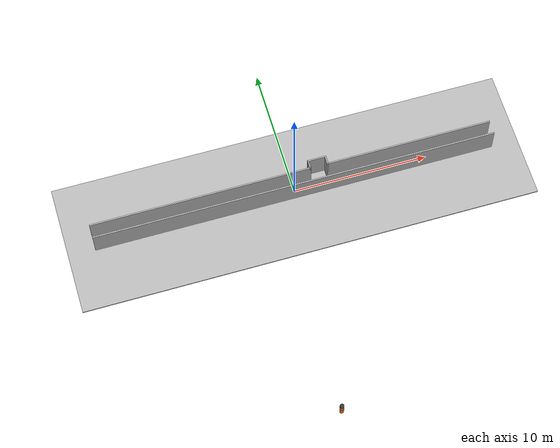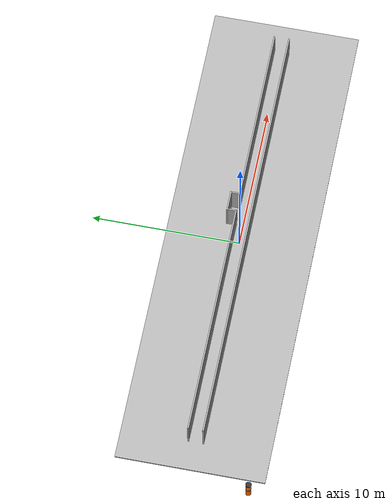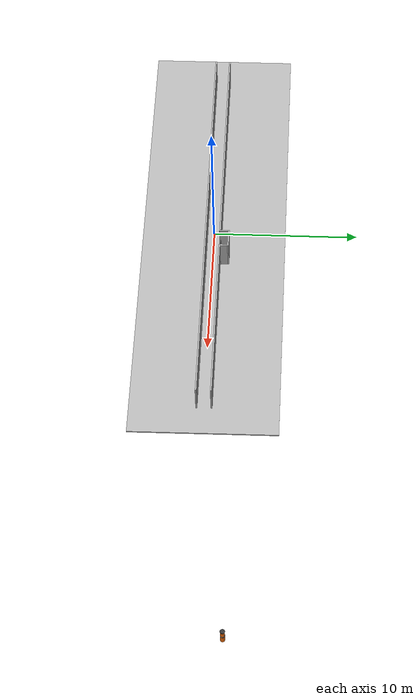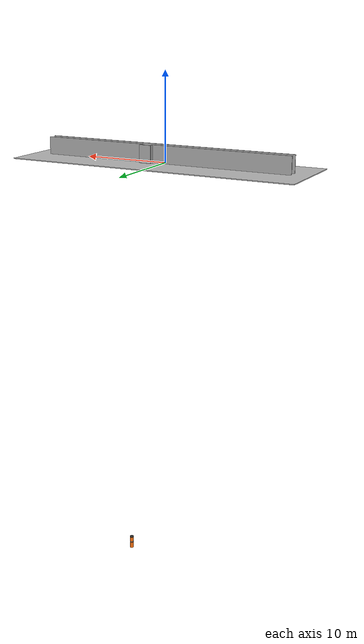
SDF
<sdf version="1.9">
 <world name="corridor_0.90">
  <gravity>0 0 -9.81</gravity>
  <light name="sun" type="directional">
   <pose>0 0 10 0 0 0</pose>
   <diffuse>0.8 0.8 0.8 1</diffuse>
   <specular>0.2 0.2 0.2 1</specular>
   <attenuation>
    <range>1000</range>
    <constant>0.9</constant>
    <linear>0.01</linear>
    <quadratic>0.001</quadratic>
   </attenuation>
   <direction>-0.5 0.1 -0.9</direction>
  </light>
  <plugin filename="gz-sim-physics-system" name="gz::sim::systems::Physics"/>
  <plugin filename="gz-sim-user-commands-system" name="gz::sim::systems::UserCommands"/>
  <plugin filename="gz-sim-scene-broadcaster-system" name="gz::sim::systems::SceneBroadcaster"/>
  <plugin filename="gz-sim-sensors-system" name="gz::sim::systems::Sensors">
   <render_engine>ogre2</render_engine>
  </plugin>
  <plugin filename="gz-sim-imu-system" name="gz::sim::systems::Imu"/>
  <model name="ground">
   <static>true</static>
   <link name="link">
    <collision name="collision"><geometry><box><size>34.0 10.0 0.1</size></box></geometry></collision>
    <visual name="visual">
     <geometry><box><size>34.0 10.0 0.1</size></box></geometry>
     <material><ambient>0.7 0.7 0.7 1</ambient><diffuse>0.7 0.7 0.7 1</diffuse></material>
    </visual>
   </link>
   <pose>0.0 0.0 -0.05 0 0 0</pose>
  </model>
  <model name="left_wall">
   <static>true</static>
   <link name="link">
    <collision name="collision"><geometry><box><size>30.0 0.1 2.0</size></box></geometry></collision>
    <visual name="visual">
     <geometry><box><size>30.0 0.1 2.0</size></box></geometry>
     <material><ambient>0.7 0.7 0.7 1</ambient><diffuse>0.7 0.7 0.7 1</diffuse></material>
    </visual>
   </link>
   <pose>0.0 -0.5 1.0 0 0 0</pose>
  </model>
  <model name="right_wall_front">
   <static>true</static>
   <link name="link">
    <collision name="collision"><geometry><box><size>16.4 0.1 2.0</size></box></geometry></collision>
    <visual name="visual">
     <geometry><box><size>16.4 0.1 2.0</size></box></geometry>
     <material><ambient>0.7 0.7 0.7 1</ambient><diffuse>0.7 0.7 0.7 1</diffuse></material>
    </visual>
   </link>
   <pose>-6.800000000000001 0.5 1.0 0 0 0</pose>
  </model>
  <model name="right_wall_back">
   <static>true</static>
   <link name="link">
    <collision name="collision"><geometry><box><size>12.4 0.1 2.0</size></box></geometry></collision>
    <visual name="visual">
     <geometry><box><size>12.4 0.1 2.0</size></box></geometry>
     <material><ambient>0.7 0.7 0.7 1</ambient><diffuse>0.7 0.7 0.7 1</diffuse></material>
    </visual>
   </link>
   <pose>8.8 0.5 1.0 0 0 0</pose>
  </model>
  <model name="recess_side_left">
   <static>true</static>
   <link name="link">
    <collision name="collision"><geometry><box><size>0.1 0.6 2.0</size></box></geometry></collision>
    <visual name="visual">
     <geometry><box><size>0.1 0.6 2.0</size></box></geometry>
     <material><ambient>0.7 0.7 0.7 1</ambient><diffuse>0.7 0.7 0.7 1</diffuse></material>
    </visual>
   </link>
   <pose>1.3499999999999999 0.75 1.0 0 0 0</pose>
  </model>
  <model name="recess_side_right">
   <static>true</static>
   <link name="link">
    <collision name="collision"><geometry><box><size>0.1 0.6 2.0</size></box></geometry></collision>
    <visual name="visual">
     <geometry><box><size>0.1 0.6 2.0</size></box></geometry>
     <material><ambient>0.7 0.7 0.7 1</ambient><diffuse>0.7 0.7 0.7 1</diffuse></material>
    </visual>
   </link>
   <pose>2.65 0.75 1.0 0 0 0</pose>
  </model>
  <model name="recess_back">
   <static>true</static>
   <link name="link">
    <collision name="collision"><geometry><box><size>1.4 0.1 2.0</size></box></geometry></collision>
    <visual name="visual">
     <geometry><box><size>1.4 0.1 2.0</size></box></geometry>
     <material><ambient>0.7 0.7 0.7 1</ambient><diffuse>0.7 0.7 0.7 1</diffuse></material>
    </visual>
   </link>
   <pose>2.0 1.1 1.0 0 0 0</pose>
  </model>
  <plugin filename="librvo2_human_system.so" name="custom_corridor::RVO2HumanSystem">
   <human_count>1</human_count>
   <robot_name>burger</robot_name>
   <robot_radius>0.28</robot_radius>
   <human_radius>0.28</human_radius>
   <corridor_mode>true</corridor_mode>
   <corridor_half_width>0.45</corridor_half_width>
   <recess_x_min>1.35</recess_x_min>
   <recess_x_max>2.65</recess_x_max>
   <recess_x_center>2.00</recess_x_center>
   <recess_y>0.75</recess_y>
   <recess_approach_dist>3.5</recess_approach_dist>
   <recess_threshold>0.40</recess_threshold>
   <politeness_balance_point>0.60</politeness_balance_point>
   <randomize_politeness>true</randomize_politeness>
   <visual_z>0.95</visual_z>
   <proxy_z>0.80</proxy_z>
  </plugin>
  <model name="human_01_proxy">
   <pose>5.0 0.0 0.80 0 0 3.14159</pose>
   <link name="link">
    <gravity>false</gravity>
    <kinematic>true</kinematic>
    <collision name="collision">
     <geometry><cylinder><radius>0.28</radius><length>1.70</length></cylinder></geometry>
    </collision>
    <visual name="visual">
     <geometry><cylinder><radius>0.001</radius><length>0.001</length></cylinder></geometry>
     <transparency>1.0</transparency>
    </visual>
   </link>
  </model>
  <model name="dynamic_object">
   <pose>5.0 0.0 -50.0 0 0 3.14159</pose>
   <link name="link">
    <gravity>false</gravity>
    <kinematic>true</kinematic>
    <collision name="collision">
     <geometry><cylinder><radius>0.22</radius><length>1.70</length></cylinder></geometry>
    </collision>
    <visual name="body_visual">
     <geometry><cylinder><radius>0.22</radius><length>1.50</length></cylinder></geometry>
     <material>
      <ambient>0.9 0.4 0.0 1</ambient>
      <diffuse>1.0 0.45 0.05 1</diffuse>
      <specular>0.6 0.6 0.6 1</specular>
     </material>
    </visual>
    <visual name="cap_visual">
     <pose>0 0 0.80 0 0 0</pose>
     <geometry><cylinder><radius>0.23</radius><length>0.10</length></cylinder></geometry>
     <material>
      <ambient>0.2 0.2 0.2 1</ambient>
      <diffuse>0.2 0.2 0.2 1</diffuse>
      <specular>0.8 0.8 0.8 1</specular>
     </material>
    </visual>
    <visual name="band_visual">
     <pose>0 0 0.10 0 0 0</pose>
     <geometry><cylinder><radius>0.225</radius><length>0.15</length></cylinder></geometry>
     <material><ambient>0.1 0.1 0.1 1</ambient><diffuse>0.1 0.1 0.1 1</diffuse></material>
    </visual>
   </link>
  </model>
 </world>
</sdf>
